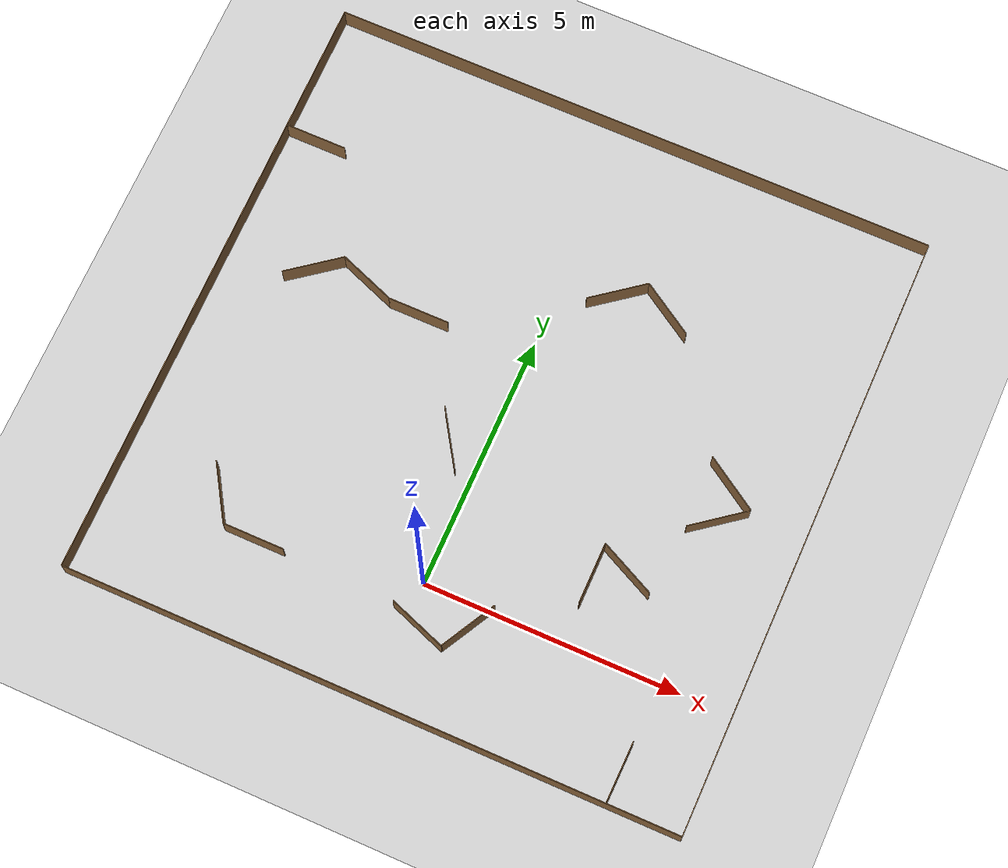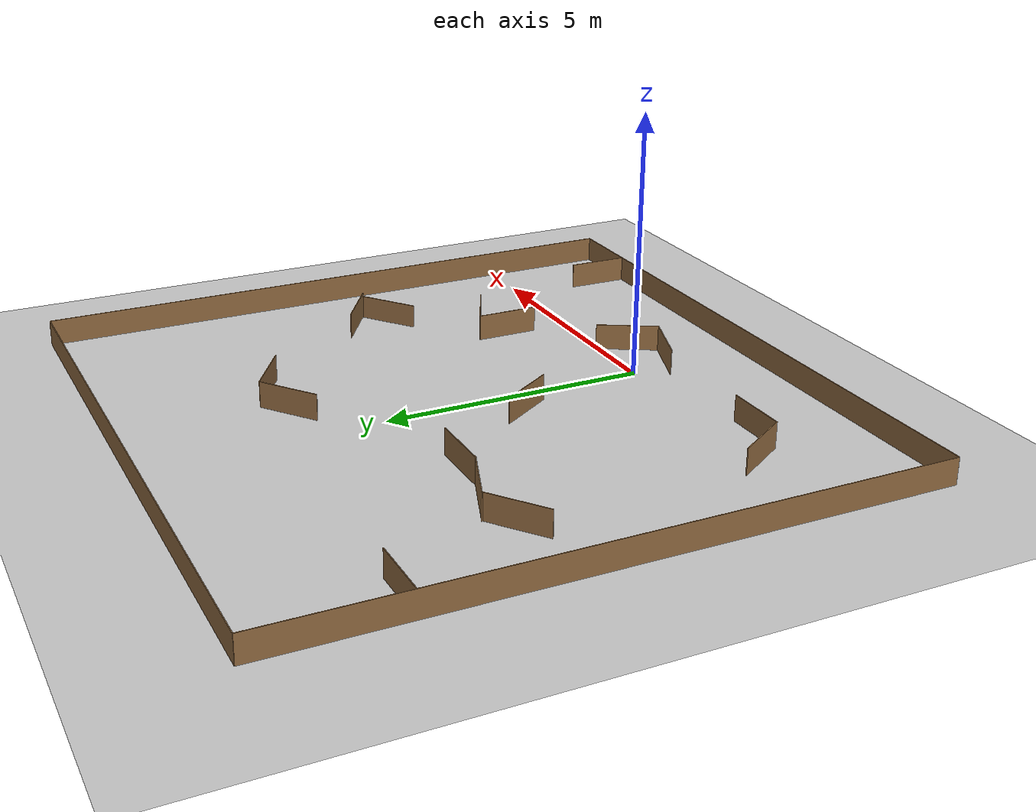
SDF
<sdf version="1.6">
 <world name="default">
  <scene><ambient>0.5 0.5 0.5 1</ambient><shadows>0</shadows><background>0.7 0.7 0.7 1</background></scene>
  <model name="ground_plane">
   <static>1</static>
   <link name="link">
    <collision name="collision">
     <geometry><plane><normal>0 0 1</normal><size>100 100</size></plane></geometry>
     <surface><friction><ode><mu>100</mu><mu2>50</mu2></ode></friction></surface>
    </collision>
    <visual name="visual">
     <cast_shadows>0</cast_shadows>
     <geometry><plane><normal>0 0 1</normal><size>100 100</size></plane></geometry>
     <material>
      <script><uri>file://media/materials/scripts/gazebo.material</uri><name>Gazebo/Grey</name></script>
     </material>
    </visual>
   </link>
  </model>
  <light name="sun" type="directional">
   <pose>0 0 10 0 -0 0</pose>
   <diffuse>0.8 0.8 0.8 1</diffuse>
   <specular>0.1 0.1 0.1 1</specular>
   <attenuation>
    <range>1000</range>
    <constant>0.9</constant>
    <linear>0.01</linear>
    <quadratic>0.001</quadratic>
   </attenuation>
   <direction>-0.5 0.5 -1</direction>
  </light>
  <gravity>0 0 -9.8</gravity>
  <magnetic_field>6e-06 2.3e-05 -4.2e-05</magnetic_field>
  <atmosphere type="adiabatic"/>
  <physics name="default_physics" default="0" type="ode">
   <max_step_size>0.001</max_step_size>
   <real_time_factor>1</real_time_factor>
   <real_time_update_rate>1000</real_time_update_rate>
  </physics>
  <scene><ambient>0.4 0.4 0.4 1</ambient><background>0.7 0.7 0.7 1</background><shadows>1</shadows></scene>
  <spherical_coordinates>
   <surface_model>EARTH_WGS84</surface_model>
   <latitude_deg>0</latitude_deg>
   <longitude_deg>0</longitude_deg>
   <elevation>0</elevation>
   <heading_deg>0</heading_deg>
  </spherical_coordinates>
  <model name="papptown_wall">
   <pose>1.0923 -0.481603 0 0 0 -0.496041</pose>
   <static>1</static>
   <link name="link">
    <pose>0 0 0.25 0 -0 0</pose>
    <collision name="collision"><geometry><box><size>0.015 1.2 0.5</size></box></geometry></collision>
    <visual name="visual">
     <geometry><box><size>0.015 1.2 0.5</size></box></geometry>
     <material>
      <ambient>0.5 0.5 0.5 1</ambient>
      <diffuse>0.57 0.417 0.25 1</diffuse>
      <specular>0.1 0.1 0.1 1</specular>
      <emissive>0 0 0 0</emissive>
     </material>
    </visual>
   </link>
  </model>
  <model name="cardboard_wall_6">
   <pose>-4.0123 -0.028946 -0 0 -0 0.554355</pose>
   <static>1</static>
   <link name="link">
    <pose>0 0 0.25 0 -0 0</pose>
    <collision name="collision"><geometry><box><size>0.015 1.2 0.5</size></box></geometry></collision>
    <visual name="visual">
     <geometry><box><size>0.015 1.2 0.5</size></box></geometry>
     <material>
      <ambient>0.5 0.5 0.5 1</ambient>
      <diffuse>0.57 0.417 0.25 1</diffuse>
      <specular>0.1 0.1 0.1 1</specular>
      <emissive>0 0 0 0</emissive>
     </material>
    </visual>
   </link>
  </model>
  <model name="cardboard_wall_10">
   <pose>-4.33704 4.64361 0 0 0 -0.913867</pose>
   <static>1</static>
   <link name="link">
    <pose>0 0 0.25 0 -0 0</pose>
    <collision name="collision"><geometry><box><size>0.015 1.2 0.5</size></box></geometry></collision>
    <visual name="visual">
     <geometry><box><size>0.015 1.2 0.5</size></box></geometry>
     <material>
      <ambient>0.5 0.5 0.5 1</ambient>
      <diffuse>0.57 0.417 0.25 1</diffuse>
      <specular>0.1 0.1 0.1 1</specular>
      <emissive>0 0 0 0</emissive>
     </material>
    </visual>
   </link>
  </model>
  <model name="cardboard_wall_13">
   <pose>-3.10347 -0.534083 -0 0 -0 1.5708</pose>
   <static>1</static>
   <link name="link">
    <pose>0 0 0.25 0 -0 0</pose>
    <collision name="collision"><geometry><box><size>0.015 1.2 0.5</size></box></geometry></collision>
    <visual name="visual">
     <geometry><box><size>0.015 1.2 0.5</size></box></geometry>
     <material>
      <ambient>0.5 0.5 0.5 1</ambient>
      <diffuse>0.57 0.417 0.25 1</diffuse>
      <specular>0.1 0.1 0.1 1</specular>
      <emissive>0 0 0 0</emissive>
     </material>
    </visual>
   </link>
  </model>
  <model name="cardboard_wall_15">
   <pose>4.37711 3.84016 0 0 -0 0.997248</pose>
   <static>1</static>
   <link name="link">
    <pose>0 0 0.25 0 -0 0</pose>
    <collision name="collision"><geometry><box><size>0.015 1.2 0.5</size></box></geometry></collision>
    <visual name="visual">
     <geometry><box><size>0.015 1.2 0.5</size></box></geometry>
     <material>
      <ambient>0.5 0.5 0.5 1</ambient>
      <diffuse>0.57 0.417 0.25 1</diffuse>
      <specular>0.1 0.1 0.1 1</specular>
      <emissive>0 0 0 0</emissive>
     </material>
    </visual>
   </link>
  </model>
  <model name="fence">
   <link name="cardboard_wall::link">
    <pose>0 3.6 0.25 0 -0 0</pose>
    <inertial>
     <mass>1</mass>
     <inertia><ixx>1</ixx><ixy>0</ixy><ixz>0</ixz><iyy>1</iyy><iyz>0</iyz><izz>1</izz></inertia>
    </inertial>
    <visual name="visual">
     <geometry><box><size>0.015 12 0.5</size></box></geometry>
     <material>
      <ambient>0.5 0.5 0.5 1</ambient>
      <diffuse>0.57 0.417 0.25 1</diffuse>
      <specular>0.1 0.1 0.1 1</specular>
      <emissive>0 0 0 1</emissive>
      <script><name>ModelPreview_1::cardboard_wall::link::visual_MATERIAL_</name><uri>__default__</uri></script>
      <shader type="vertex"><normal_map>__default__</normal_map></shader>
     </material>
    </visual>
    <collision name="collision">
     <geometry><box><size>0.015 12 0.5</size></box></geometry>
     <surface>
      <friction>
       <ode><mu>1</mu><mu2>1</mu2><fdir1>0 0 0</fdir1><slip1>0</slip1><slip2>0</slip2></ode>
       <torsional>
        <coefficient>1</coefficient>
        <patch_radius>0</patch_radius>
        <surface_radius>0</surface_radius>
        <use_patch_radius>1</use_patch_radius>
        <ode><slip>0</slip></ode>
       </torsional>
      </friction>
      <bounce><restitution_coefficient>0</restitution_coefficient><threshold>1e+06</threshold></bounce>
      <contact>
       <collide_without_contact>0</collide_without_contact>
       <collide_without_contact_bitmask>1</collide_without_contact_bitmask>
       <collide_bitmask>1</collide_bitmask>
       <ode>
        <soft_cfm>0</soft_cfm>
        <soft_erp>0.2</soft_erp>
        <kp>1e+13</kp>
        <kd>1</kd>
        <max_vel>0.01</max_vel>
        <min_depth>0</min_depth>
       </ode>
       <bullet>
        <split_impulse>1</split_impulse>
        <split_impulse_penetration_threshold>-0.01</split_impulse_penetration_threshold>
        <soft_cfm>0</soft_cfm>
        <soft_erp>0.2</soft_erp>
        <kp>1e+13</kp>
        <kd>1</kd>
       </bullet>
      </contact>
     </surface>
    </collision>
   </link>
   <link name="link_clone">
    <pose>12 3.6 0.25 0 -0 0</pose>
    <inertial>
     <mass>1</mass>
     <inertia><ixx>1</ixx><ixy>0</ixy><ixz>0</ixz><iyy>1</iyy><iyz>0</iyz><izz>1</izz></inertia>
    </inertial>
    <visual name="visual">
     <geometry><box><size>0.015 12 0.5</size></box></geometry>
     <material>
      <ambient>0.5 0.5 0.5 1</ambient>
      <diffuse>0.57 0.417 0.25 1</diffuse>
      <specular>0.1 0.1 0.1 1</specular>
      <emissive>0 0 0 1</emissive>
      <script><name>ModelPreview_1::cardboard_wall::link::visual_MATERIAL_</name><uri>__default__</uri></script>
      <shader type="vertex"><normal_map>__default__</normal_map></shader>
     </material>
    </visual>
    <collision name="collision">
     <geometry><box><size>0.015 12 0.5</size></box></geometry>
     <surface>
      <friction>
       <ode><mu>1</mu><mu2>1</mu2><fdir1>0 0 0</fdir1><slip1>0</slip1><slip2>0</slip2></ode>
       <torsional>
        <coefficient>1</coefficient>
        <patch_radius>0</patch_radius>
        <surface_radius>0</surface_radius>
        <use_patch_radius>1</use_patch_radius>
        <ode><slip>0</slip></ode>
       </torsional>
      </friction>
      <bounce><restitution_coefficient>0</restitution_coefficient><threshold>1e+06</threshold></bounce>
      <contact>
       <collide_without_contact>0</collide_without_contact>
       <collide_without_contact_bitmask>1</collide_without_contact_bitmask>
       <collide_bitmask>1</collide_bitmask>
       <ode>
        <soft_cfm>0</soft_cfm>
        <soft_erp>0.2</soft_erp>
        <kp>1e+13</kp>
        <kd>1</kd>
        <max_vel>0.01</max_vel>
        <min_depth>0</min_depth>
       </ode>
       <bullet>
        <split_impulse>1</split_impulse>
        <split_impulse_penetration_threshold>-0.01</split_impulse_penetration_threshold>
        <soft_cfm>0</soft_cfm>
        <soft_erp>0.2</soft_erp>
        <kp>1e+13</kp>
        <kd>1</kd>
       </bullet>
      </contact>
     </surface>
    </collision>
   </link>
   <link name="link_clone_0">
    <pose>6 9.6 0.25 0 -0 1.571</pose>
    <inertial>
     <mass>1</mass>
     <inertia><ixx>1</ixx><ixy>0</ixy><ixz>0</ixz><iyy>1</iyy><iyz>0</iyz><izz>1</izz></inertia>
    </inertial>
    <visual name="visual">
     <geometry><box><size>0.015 12 0.5</size></box></geometry>
     <material>
      <ambient>0.5 0.5 0.5 1</ambient>
      <diffuse>0.57 0.417 0.25 1</diffuse>
      <specular>0.1 0.1 0.1 1</specular>
      <emissive>0 0 0 1</emissive>
      <script><name>ModelPreview_1::cardboard_wall::link::visual_MATERIAL_</name><uri>__default__</uri></script>
      <shader type="vertex"><normal_map>__default__</normal_map></shader>
     </material>
    </visual>
    <collision name="collision">
     <geometry><box><size>0.015 12 0.5</size></box></geometry>
     <surface>
      <friction>
       <ode><mu>1</mu><mu2>1</mu2><fdir1>0 0 0</fdir1><slip1>0</slip1><slip2>0</slip2></ode>
       <torsional>
        <coefficient>1</coefficient>
        <patch_radius>0</patch_radius>
        <surface_radius>0</surface_radius>
        <use_patch_radius>1</use_patch_radius>
        <ode><slip>0</slip></ode>
       </torsional>
      </friction>
      <bounce><restitution_coefficient>0</restitution_coefficient><threshold>1e+06</threshold></bounce>
      <contact>
       <collide_without_contact>0</collide_without_contact>
       <collide_without_contact_bitmask>1</collide_without_contact_bitmask>
       <collide_bitmask>1</collide_bitmask>
       <ode>
        <soft_cfm>0</soft_cfm>
        <soft_erp>0.2</soft_erp>
        <kp>1e+13</kp>
        <kd>1</kd>
        <max_vel>0.01</max_vel>
        <min_depth>0</min_depth>
       </ode>
       <bullet>
        <split_impulse>1</split_impulse>
        <split_impulse_penetration_threshold>-0.01</split_impulse_penetration_threshold>
        <soft_cfm>0</soft_cfm>
        <soft_erp>0.2</soft_erp>
        <kp>1e+13</kp>
        <kd>1</kd>
       </bullet>
      </contact>
     </surface>
    </collision>
   </link>
   <link name="link_clone_1">
    <pose>6 -2.4 0.25 0 -0 1.571</pose>
    <inertial>
     <mass>1</mass>
     <inertia><ixx>1</ixx><ixy>0</ixy><ixz>0</ixz><iyy>1</iyy><iyz>0</iyz><izz>1</izz></inertia>
    </inertial>
    <visual name="visual">
     <geometry><box><size>0.015 12 0.5</size></box></geometry>
     <material>
      <ambient>0.5 0.5 0.5 1</ambient>
      <diffuse>0.57 0.417 0.25 1</diffuse>
      <specular>0.1 0.1 0.1 1</specular>
      <emissive>0 0 0 1</emissive>
      <script><name>ModelPreview_1::cardboard_wall::link::visual_MATERIAL_</name><uri>__default__</uri></script>
      <shader type="vertex"><normal_map>__default__</normal_map></shader>
     </material>
    </visual>
    <collision name="collision">
     <geometry><box><size>0.015 12 0.5</size></box></geometry>
     <surface>
      <friction>
       <ode><mu>1</mu><mu2>1</mu2><fdir1>0 0 0</fdir1><slip1>0</slip1><slip2>0</slip2></ode>
       <torsional>
        <coefficient>1</coefficient>
        <patch_radius>0</patch_radius>
        <surface_radius>0</surface_radius>
        <use_patch_radius>1</use_patch_radius>
        <ode><slip>0</slip></ode>
       </torsional>
      </friction>
      <bounce><restitution_coefficient>0</restitution_coefficient><threshold>1e+06</threshold></bounce>
      <contact>
       <collide_without_contact>0</collide_without_contact>
       <collide_without_contact_bitmask>1</collide_without_contact_bitmask>
       <collide_bitmask>1</collide_bitmask>
       <ode>
        <soft_cfm>0</soft_cfm>
        <soft_erp>0.2</soft_erp>
        <kp>1e+13</kp>
        <kd>1</kd>
        <max_vel>0.01</max_vel>
        <min_depth>0</min_depth>
       </ode>
       <bullet>
        <split_impulse>1</split_impulse>
        <split_impulse_penetration_threshold>-0.01</split_impulse_penetration_threshold>
        <soft_cfm>0</soft_cfm>
        <soft_erp>0.2</soft_erp>
        <kp>1e+13</kp>
        <kd>1</kd>
       </bullet>
      </contact>
     </surface>
    </collision>
   </link>
   <static>1</static>
   <pose>-6 0 0 0 -0 0</pose>
  </model>
  <physics name="default_physics" default="0" type="ode">
   <max_step_size>0.005</max_step_size>
   <real_time_factor>1</real_time_factor>
   <real_time_update_rate>100</real_time_update_rate>
  </physics>
  <audio><device>default</device></audio>
  <model name="wall_1_clone">
   <pose>4.57507 -1.80608 0 0 0 -0.015752</pose>
   <static>1</static>
   <link name="cardboard_wall::link">
    <pose>0 0 0.25 0 -0 0</pose>
    <collision name="collision"><geometry><box><size>0.015 1.2 0.5</size></box></geometry></collision>
    <visual name="visual">
     <geometry><box><size>0.015 1.2 0.5</size></box></geometry>
     <material>
      <ambient>0.5 0.5 0.5 1</ambient>
      <diffuse>0.57 0.417 0.25 1</diffuse>
      <specular>0.1 0.1 0.1 1</specular>
      <emissive>0 0 0 0</emissive>
     </material>
    </visual>
   </link>
  </model>
  <model name="cardboard_wall_6_clone">
   <pose>-3.32243 4.80568 0 0 -0 1.20901</pose>
   <static>1</static>
   <link name="link">
    <pose>0 0 0.25 0 -0 0</pose>
    <collision name="collision"><geometry><box><size>0.015 1.2 0.5</size></box></geometry></collision>
    <visual name="visual">
     <geometry><box><size>0.015 1.2 0.5</size></box></geometry>
     <material>
      <ambient>0.5 0.5 0.5 1</ambient>
      <diffuse>0.57 0.417 0.25 1</diffuse>
      <specular>0.1 0.1 0.1 1</specular>
      <emissive>0 0 0 0</emissive>
     </material>
    </visual>
   </link>
  </model>
  <model name="cardboard_wall_6_clone_0">
   <pose>3.27228 1.62578 0 0 -0 1.11792</pose>
   <static>1</static>
   <link name="link">
    <pose>0 0 0.25 0 -0 0</pose>
    <collision name="collision"><geometry><box><size>0.015 1.2 0.5</size></box></geometry></collision>
    <visual name="visual">
     <geometry><box><size>0.015 1.2 0.5</size></box></geometry>
     <material>
      <ambient>0.5 0.5 0.5 1</ambient>
      <diffuse>0.57 0.417 0.25 1</diffuse>
      <specular>0.1 0.1 0.1 1</specular>
      <emissive>0 0 0 0</emissive>
     </material>
    </visual>
   </link>
  </model>
  <model name="cardboard_wall_13_clone">
   <pose>-5.3957 7.0099 -0 0 -0 1.5708</pose>
   <static>1</static>
   <link name="link">
    <pose>0 0 0.25 0 -0 0</pose>
    <collision name="collision"><geometry><box><size>0.015 1.2 0.5</size></box></geometry></collision>
    <visual name="visual">
     <geometry><box><size>0.015 1.2 0.5</size></box></geometry>
     <material>
      <ambient>0.5 0.5 0.5 1</ambient>
      <diffuse>0.57 0.417 0.25 1</diffuse>
      <specular>0.1 0.1 0.1 1</specular>
      <emissive>0 0 0 0</emissive>
     </material>
    </visual>
   </link>
  </model>
  <model name="cardboard_wall_6_clone_2">
   <pose>0.251976 -0.805188 0 0 -0 1.22194</pose>
   <static>1</static>
   <link name="link">
    <pose>0 0 0.25 0 -0 0</pose>
    <collision name="collision"><geometry><box><size>0.015 1.2 0.5</size></box></geometry></collision>
    <visual name="visual">
     <geometry><box><size>0.015 1.2 0.5</size></box></geometry>
     <material>
      <ambient>0.5 0.5 0.5 1</ambient>
      <diffuse>0.57 0.417 0.25 1</diffuse>
      <specular>0.1 0.1 0.1 1</specular>
      <emissive>0 0 0 0</emissive>
     </material>
    </visual>
   </link>
  </model>
  <model name="cardboard_wall_15_clone">
   <pose>2.02529 6.48351 -0 0 0 -2.13573</pose>
   <static>1</static>
   <link name="link">
    <pose>0 0 0.25 0 -0 0</pose>
    <collision name="collision"><geometry><box><size>0.015 1.2 0.5</size></box></geometry></collision>
    <visual name="visual">
     <geometry><box><size>0.015 1.2 0.5</size></box></geometry>
     <material>
      <ambient>0.5 0.5 0.5 1</ambient>
      <diffuse>0.57 0.417 0.25 1</diffuse>
      <specular>0.1 0.1 0.1 1</specular>
      <emissive>0 0 0 0</emissive>
     </material>
    </visual>
   </link>
  </model>
  <model name="cardboard_wall_10_clone">
   <pose>4.41026 3.15713 -0.061943 0 0 -0.913867</pose>
   <static>1</static>
   <link name="link">
    <pose>0 0 0.25 0 -0 0</pose>
    <collision name="collision"><geometry><box><size>0.015 1.2 0.5</size></box></geometry></collision>
    <visual name="visual">
     <geometry><box><size>0.015 1.2 0.5</size></box></geometry>
     <material>
      <ambient>0.5 0.5 0.5 1</ambient>
      <diffuse>0.57 0.417 0.25 1</diffuse>
      <specular>0.1 0.1 0.1 1</specular>
      <emissive>0 0 0 0</emissive>
     </material>
    </visual>
   </link>
  </model>
  <model name="cardboard_wall_10_clone_0">
   <pose>1.04635 6.43485 0 0 0 -0.913867</pose>
   <static>1</static>
   <link name="link">
    <pose>0 0 0.25 0 -0 0</pose>
    <collision name="collision"><geometry><box><size>0.015 1.2 0.5</size></box></geometry></collision>
    <visual name="visual">
     <geometry><box><size>0.015 1.2 0.5</size></box></geometry>
     <material>
      <ambient>0.5 0.5 0.5 1</ambient>
      <diffuse>0.57 0.417 0.25 1</diffuse>
      <specular>0.1 0.1 0.1 1</specular>
      <emissive>0 0 0 0</emissive>
     </material>
    </visual>
   </link>
  </model>
  <model name="cardboard_wall_15_clone_clone">
   <pose>2.73154 1.29281 -0 0 -0 0</pose>
   <static>1</static>
   <link name="link">
    <pose>0 0 0.25 0 -0 0</pose>
    <collision name="collision"><geometry><box><size>0.015 1.2 0.5</size></box></geometry></collision>
    <visual name="visual">
     <geometry><box><size>0.015 1.2 0.5</size></box></geometry>
     <material>
      <ambient>0.5 0.5 0.5 1</ambient>
      <diffuse>0.57 0.417 0.25 1</diffuse>
      <specular>0.1 0.1 0.1 1</specular>
      <emissive>0 0 0 0</emissive>
     </material>
    </visual>
   </link>
  </model>
  <model name="cardboard_wall_6_clone_clone">
   <pose>-0.635233 2.58642 0 0 -0 0.569084</pose>
   <static>1</static>
   <link name="link">
    <pose>0 0 0.25 0 -0 0</pose>
    <collision name="collision"><geometry><box><size>0.015 1.2 0.5</size></box></geometry></collision>
    <visual name="visual">
     <geometry><box><size>0.015 1.2 0.5</size></box></geometry>
     <material>
      <ambient>0.5 0.5 0.5 1</ambient>
      <diffuse>0.57 0.417 0.25 1</diffuse>
      <specular>0.1 0.1 0.1 1</specular>
      <emissive>0 0 0 0</emissive>
     </material>
    </visual>
   </link>
  </model>
  <model name="cardboard_wall_13_clone_clone">
   <pose>-2.17461 4.59518 0 0 -0 1.5708</pose>
   <static>1</static>
   <link name="link">
    <pose>0 0 0.25 0 -0 0</pose>
    <collision name="collision"><geometry><box><size>0.015 1.2 0.5</size></box></geometry></collision>
    <visual name="visual">
     <geometry><box><size>0.015 1.2 0.5</size></box></geometry>
     <material>
      <ambient>0.5 0.5 0.5 1</ambient>
      <diffuse>0.57 0.417 0.25 1</diffuse>
      <specular>0.1 0.1 0.1 1</specular>
      <emissive>0 0 0 0</emissive>
     </material>
    </visual>
   </link>
  </model>
 </world>
</sdf>
